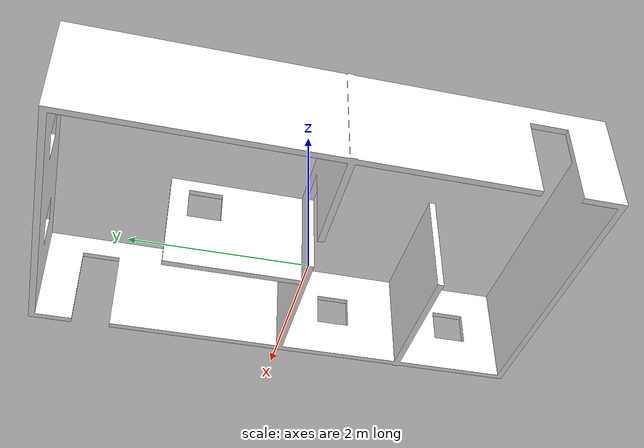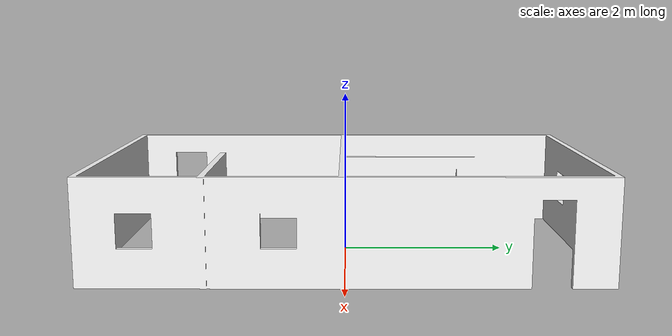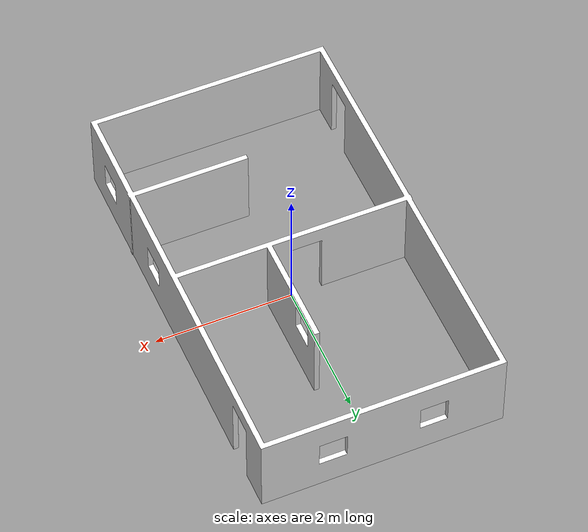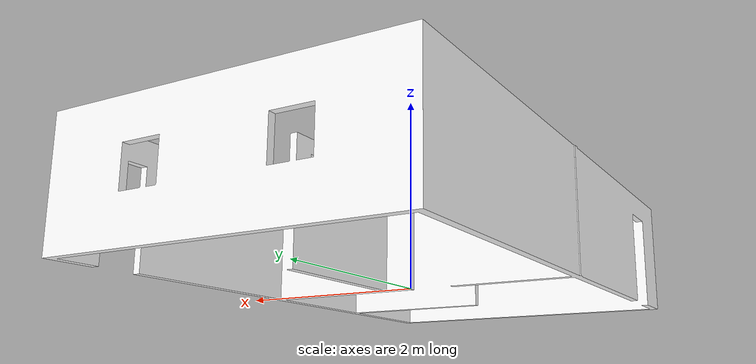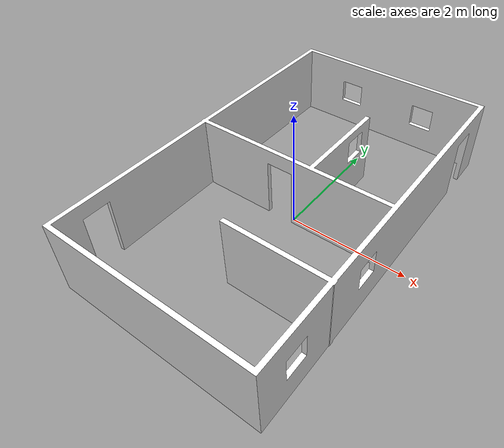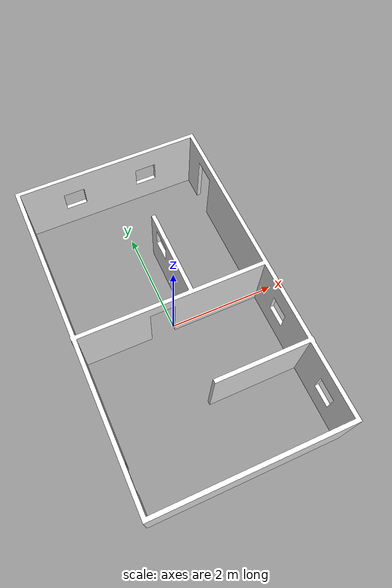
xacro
<?xml version="1.0"?>
<robot name="urdf_robot2" xmlns:xacro="http://www.ros.org/wiki/xacro">
  <xacro:arg name="mesh_prefix" default="$(find gpd_ros)"/>
  <link name="wall" concave="yes">
    <contact>
      <rolling_friction value="0.03" />
      <spinning_friction value="0.03" />
    </contact>

    <inertial>
      <origin rpy="0 0 0" xyz="0 0 0" />
      <mass value="0.0" />
      <inertia ixx="1" ixy="0" ixz="0" iyy="1" iyz="0" izz="1" />
    </inertial>
    <visual>
      <origin rpy="0 0 0" xyz="0 0 0.625" />
      <geometry>
        <mesh filename="$(arg mesh_prefix)/urdf/meshes/ff_wall.obj" scale="0.5 0.5 0.5" />
      </geometry>
      <material name="white">
        <color rgba="1 1 1 1" />
        <specular rgb="11 1 1" />
      </material>
    </visual>
    <collision>
      <origin rpy="0 0 0" xyz="0 0 0.625" />
      <geometry>
        <mesh filename="$(arg mesh_prefix)/urdf/meshes/ff_wall.obj" scale="0.5 0.5 0.5" />
      </geometry>
    </collision>
  </link>
</robot>
